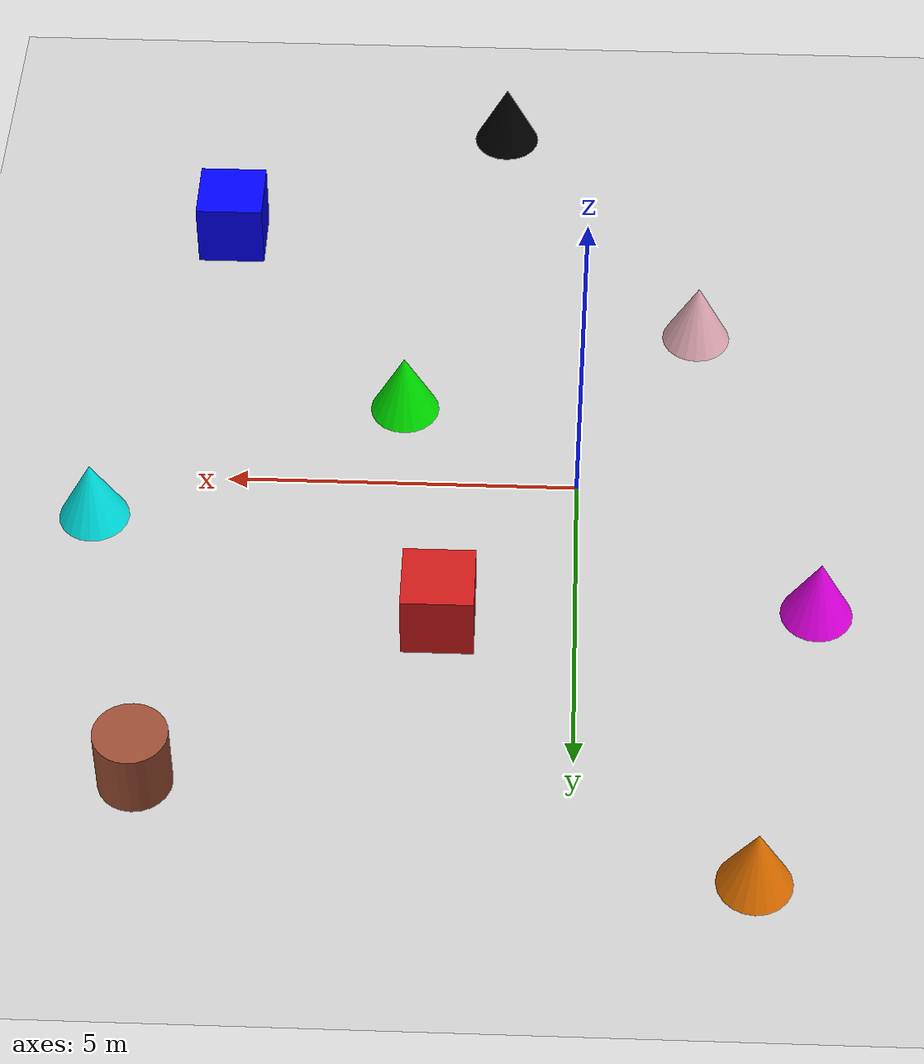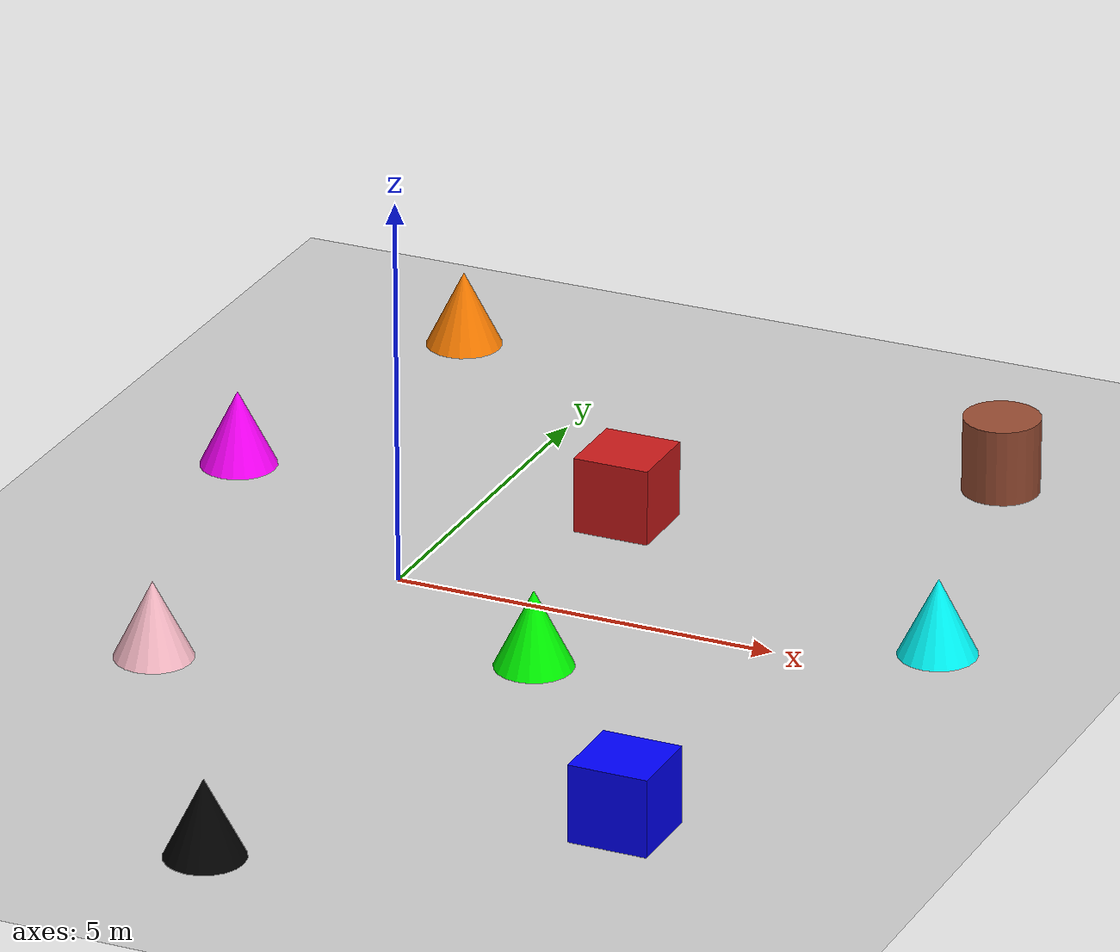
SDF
<?xml version="1.0" ?>
<sdf version='1.10'>
  <world name='robot_driver_world'>
    <physics name='1ms' type='ignored'>
      <max_step_size>0.001</max_step_size>
      <real_time_factor>1</real_time_factor>
      <real_time_update_rate>1000</real_time_update_rate>
    </physics>
    <plugin name='gz::sim::systems::Physics' filename='gz-sim-physics-system'/>
    <plugin name='gz::sim::systems::Sensors' filename='gz-sim-sensors-system'>
    <render_engine>ogre</render_engine></plugin>
    <plugin name='gz::sim::systems::UserCommands' filename='gz-sim-user-commands-system'/>
    <plugin name='gz::sim::systems::SceneBroadcaster' filename='gz-sim-scene-broadcaster-system'/>
    <plugin name='gz::sim::systems::Contact' filename='gz-sim-contact-system'/>
    <gravity>0 0 -9.8000000000000007</gravity>
    <magnetic_field>5.5644999999999998e-06 2.2875799999999999e-05 -4.2388400000000002e-05</magnetic_field>
    <atmosphere type='adiabatic'/>
    <scene>
      <ambient>0.400000006 0.400000006 0.400000006 1</ambient>
      <background>0.699999988 0.699999988 0.699999988 1</background>
      <shadows>true</shadows>
    </scene>
    <model name='ground_plane'>
      <static>true</static>
      <link name='link'>
        <collision name='collision'>
          <geometry>
            <plane>
              <normal>0 0 1</normal>
              <size>100 100</size>
            </plane>
          </geometry>
          <surface>
            <friction>
              <ode/>
            </friction>
            <bounce/>
            <contact/>
          </surface>
        </collision>
        <visual name='visual'>
          <geometry>
            <plane>
              <normal>0 0 1</normal>
              <size>100 100</size>
            </plane>
          </geometry>
          <material>
            <ambient>0.800000012 0.800000012 0.800000012 1</ambient>
            <diffuse>0.800000012 0.800000012 0.800000012 1</diffuse>
            <specular>0.800000012 0.800000012 0.800000012 1</specular>
          </material>
        </visual>
        <pose>0 0 0 0 0 0</pose>
        <inertial>
          <pose>0 0 0 0 0 0</pose>
          <mass>1</mass>
          <inertia>
            <ixx>1</ixx>
            <ixy>0</ixy>
            <ixz>0</ixz>
            <iyy>1</iyy>
            <iyz>0</iyz>
            <izz>1</izz>
          </inertia>
        </inertial>
        <enable_wind>false</enable_wind>
      </link>
      <pose>0 0 0 0 0 0</pose>
      <self_collide>false</self_collide>
    </model>
    <model name='box'>
      <pose>1.8808849001151122 2.6681089635652371 0.5 0 0 0</pose>
      <link name='box_link'>
        <inertial>
          <inertia>
            <ixx>0.16666</ixx>
            <ixy>0</ixy>
            <ixz>0</ixz>
            <iyy>0.16666</iyy>
            <iyz>0</iyz>
            <izz>0.16666</izz>
          </inertia>
          <mass>1</mass>
          <pose>0 0 0 0 0 0</pose>
        </inertial>
        <collision name='box_collision'>
          <geometry>
            <box>
              <size>1 1 1</size>
            </box>
          </geometry>
          <surface>
            <friction>
              <ode/>
            </friction>
            <bounce/>
            <contact/>
          </surface>
        </collision>
        <visual name='box_visual'>
          <geometry>
            <box>
              <size>1 1 1</size>
            </box>
          </geometry>
          <material>
            <ambient>0.8 0.1 0.1 1</ambient>
            <diffuse>0.8 0.1 0.1 1</diffuse>
            <specular>1 1 1 1</specular>
          </material>
        </visual>
        <pose>0 0 0 0 0 0</pose>
        <enable_wind>false</enable_wind>
      </link>
      <static>false</static>
      <self_collide>false</self_collide>
    </model>
    <model name='cone'>
      <pose>2.5363783124573063 -1.5265271995510261 0.5 0 0 0</pose>
      <link name='cone_link'>
        <inertial>
          <inertia>
            <ixx>0.074999999999999997</ixx>
            <ixy>0</ixy>
            <ixz>0</ixz>
            <iyy>0.074999999999999997</iyy>
            <iyz>0</iyz>
            <izz>0.074999999999999997</izz>
          </inertia>
          <mass>1</mass>
          <pose>0 0 0 0 0 0</pose>
        </inertial>
        <collision name='cone_collision'>
          <geometry>
            <cone>
              <radius>0.5</radius>
              <length>1</length>
            </cone>
          </geometry>
          <surface>
            <friction>
              <ode/>
            </friction>
            <bounce/>
            <contact/>
          </surface>
        </collision>
        <visual name='cone_visual'>
          <geometry>
            <cone>
              <radius>0.5</radius>
              <length>1</length>
            </cone>
          </geometry>
          <material>
            <ambient>0 1 0 1</ambient>
            <diffuse>0 1 0 1</diffuse>
            <specular>1 1 1 1</specular>
          </material>
        </visual>
        <pose>0 0 0 0 0 0</pose>
        <enable_wind>false</enable_wind>
      </link>
      <static>false</static>
      <self_collide>false</self_collide>
    </model>
    <model name='cone_0'>
      <pose>-1.7571744638017219 -3.1843850965783709 0.5 0 0 0</pose>
      <link name='cone_link'>
        <inertial>
          <inertia>
            <ixx>0.074999999999999997</ixx>
            <ixy>0</ixy>
            <ixz>0</ixz>
            <iyy>0.074999999999999997</iyy>
            <iyz>0</iyz>
            <izz>0.074999999999999997</izz>
          </inertia>
          <mass>1</mass>
          <pose>0 0 0 0 0 0</pose>
        </inertial>
        <collision name='cone_collision'>
          <geometry>
            <cone>
              <radius>0.5</radius>
              <length>1</length>
            </cone>
          </geometry>
          <surface>
            <friction>
              <ode/>
            </friction>
            <bounce/>
            <contact/>
          </surface>
        </collision>
        <visual name='cone_visual'>
          <geometry>
            <cone>
              <radius>0.5</radius>
              <length>1</length>
            </cone>
          </geometry>
          <material>
            <ambient>1 0.75 0.8 1</ambient>
            <diffuse>1 0.75 0.8 1</diffuse>
            <specular>1 1 1 1</specular>
          </material>
        </visual>
        <pose>0 0 0 0 0 0</pose>
        <enable_wind>false</enable_wind>
      </link>
      <static>false</static>
      <self_collide>false</self_collide>
    </model>
    <model name='box_0'>
      <pose>5.3617696675330677 -5.1474330574161398 0.5 0 0 0</pose>
      <link name='box_link'>
        <inertial>
          <inertia>
            <ixx>0.16666</ixx>
            <ixy>0</ixy>
            <ixz>0</ixz>
            <iyy>0.16666</iyy>
            <iyz>0</iyz>
            <izz>0.16666</izz>
          </inertia>
          <mass>1</mass>
          <pose>0 0 0 0 0 0</pose>
        </inertial>
        <collision name='box_collision'>
          <geometry>
            <box>
              <size>1 1 1</size>
            </box>
          </geometry>
          <surface>
            <friction>
              <ode/>
            </friction>
            <bounce/>
            <contact/>
          </surface>
        </collision>
        <visual name='box_visual'>
          <geometry>
            <box>
              <size>1 1 1</size>
            </box>
          </geometry>
          <material>
            <ambient>0 0 1 1</ambient>
            <diffuse>0 0 1 1</diffuse>
            <specular>1 1 1 1</specular>
          </material>
        </visual>
        <pose>0 0 0 0 0 0</pose>
        <enable_wind>false</enable_wind>
      </link>
      <static>false</static>
      <self_collide>false</self_collide>
    </model>
    <model name='cone_1'>
      <pose>-3.3182599841417231 2.2767830280474852 0.5 0 0 0</pose>
      <link name='cone_link'>
        <inertial>
          <inertia>
            <ixx>0.074999999999999997</ixx>
            <ixy>0</ixy>
            <ixz>0</ixz>
            <iyy>0.074999999999999997</iyy>
            <iyz>0</iyz>
            <izz>0.074999999999999997</izz>
          </inertia>
          <mass>1</mass>
          <pose>0 0 0 0 0 0</pose>
        </inertial>
        <collision name='cone_collision'>
          <geometry>
            <cone>
              <radius>0.5</radius>
              <length>1</length>
            </cone>
          </geometry>
          <surface>
            <friction>
              <ode/>
            </friction>
            <bounce/>
            <contact/>
          </surface>
        </collision>
        <visual name='cone_visual'>
          <geometry>
            <cone>
              <radius>0.5</radius>
              <length>1</length>
            </cone>
          </geometry>
          <material>
            <ambient>1 0 1 1</ambient>
            <diffuse>1 0 1 1</diffuse>
            <specular>1 1 1 1</specular>
          </material>
        </visual>
        <pose>0 0 0 0 0 0</pose>
        <enable_wind>false</enable_wind>
      </link>
      <static>false</static>
      <self_collide>false</self_collide>
    </model>
    <model name='cone_2'>
      <pose>1.1920115344042963 -7.70623644106211 0.5 0 0 0</pose>
      <link name='cone_link'>
        <inertial>
          <inertia>
            <ixx>0.074999999999999997</ixx>
            <ixy>0</ixy>
            <ixz>0</ixz>
            <iyy>0.074999999999999997</iyy>
            <iyz>0</iyz>
            <izz>0.074999999999999997</izz>
          </inertia>
          <mass>1</mass>
          <pose>0 0 0 0 0 0</pose>
        </inertial>
        <collision name='cone_collision'>
          <geometry>
            <cone>
              <radius>0.5</radius>
              <length>1</length>
            </cone>
          </geometry>
          <surface>
            <friction>
              <ode/>
            </friction>
            <bounce/>
            <contact/>
          </surface>
        </collision>
        <visual name='cone_visual'>
          <geometry>
            <cone>
              <radius>0.5</radius>
              <length>1</length>
            </cone>
          </geometry>
          <material>
            <ambient>0 0 0 1</ambient>
            <diffuse>0 0 0 1</diffuse>
            <specular>1 1 1 1</specular>
          </material>
        </visual>
        <pose>0 0 0 0 0 0</pose>
        <enable_wind>false</enable_wind>
      </link>
      <static>false</static>
      <self_collide>false</self_collide>
    </model>
    <model name='cone_3'>
      <pose>6.8430712037895347 0.78498223336601658 0.5 0 0 0</pose>
      <link name='cone_link'>
        <inertial>
          <inertia>
            <ixx>0.074999999999999997</ixx>
            <ixy>0</ixy>
            <ixz>0</ixz>
            <iyy>0.074999999999999997</iyy>
            <iyz>0</iyz>
            <izz>0.074999999999999997</izz>
          </inertia>
          <mass>1</mass>
          <pose>0 0 0 0 0 0</pose>
        </inertial>
        <collision name='cone_collision'>
          <geometry>
            <cone>
              <radius>0.5</radius>
              <length>1</length>
            </cone>
          </geometry>
          <surface>
            <friction>
              <ode/>
            </friction>
            <bounce/>
            <contact/>
          </surface>
        </collision>
        <visual name='cone_visual'>
          <geometry>
            <cone>
              <radius>0.5</radius>
              <length>1</length>
            </cone>
          </geometry>
          <material>
            <ambient>0 1 1 1</ambient>
            <diffuse>0 1 1 1</diffuse>
            <specular>1 1 1 1</specular>
          </material>
        </visual>
        <pose>0 0 0 0 0 0</pose>
        <enable_wind>false</enable_wind>
      </link>
      <static>false</static>
      <self_collide>false</self_collide>
    </model>
    <model name='cone_4'>
      <pose>-2.3227051027172791 6.8757829869716449 0.5 0 0 0</pose>
      <link name='cone_link'>
        <inertial>
          <inertia>
            <ixx>0.074999999999999997</ixx>
            <ixy>0</ixy>
            <ixz>0</ixz>
            <iyy>0.074999999999999997</iyy>
            <iyz>0</iyz>
            <izz>0.074999999999999997</izz>
          </inertia>
          <mass>1</mass>
          <pose>0 0 0 0 0 0</pose>
        </inertial>
        <collision name='cone_collision'>
          <geometry>
            <cone>
              <radius>0.5</radius>
              <length>1</length>
            </cone>
          </geometry>
          <surface>
            <friction>
              <ode/>
            </friction>
            <bounce/>
            <contact/>
          </surface>
        </collision>
        <visual name='cone_visual'>
          <geometry>
            <cone>
              <radius>0.5</radius>
              <length>1</length>
            </cone>
          </geometry>
          <material>
            <ambient>1 0.5 0 1</ambient>
            <diffuse>1 0.5 0 1</diffuse>
            <specular>1 1 1 1</specular>
          </material>
        </visual>
        <pose>0 0 0 0 0 0</pose>
        <enable_wind>false</enable_wind>
      </link>
      <static>false</static>
      <self_collide>false</self_collide>
    </model>
    <model name='cylinder'>
      <pose>5.7476555903198534 5.5271890655120099 0.5 0 0 0</pose>
      <link name='cylinder_link'>
        <inertial>
          <inertia>
            <ixx>0.14580000000000001</ixx>
            <ixy>0</ixy>
            <ixz>0</ixz>
            <iyy>0.14580000000000001</iyy>
            <iyz>0</iyz>
            <izz>0.125</izz>
          </inertia>
          <mass>1</mass>
          <pose>0 0 0 0 0 0</pose>
        </inertial>
        <collision name='cylinder_collision'>
          <geometry>
            <cylinder>
              <radius>0.5</radius>
              <length>1</length>
            </cylinder>
          </geometry>
          <surface>
            <friction>
              <ode/>
            </friction>
            <bounce/>
            <contact/>
          </surface>
        </collision>
        <visual name='cylinder_visual'>
          <geometry>
            <cylinder>
              <radius>0.5</radius>
              <length>1</length>
            </cylinder>
          </geometry>
          <material>
            <ambient>0.6 0.3 0.2 1</ambient>
            <diffuse>0.6 0.3 0.2 1</diffuse>
            <specular>1 1 1 1</specular>
          </material>
        </visual>
        <pose>0 0 0 0 0 0</pose>
        <enable_wind>false</enable_wind>
      </link>
      <static>false</static>
      <self_collide>false</self_collide>
    </model>
    <light name='sun' type='directional'>
      <pose>0 0 10 0 0 0</pose>
      <cast_shadows>true</cast_shadows>
      <intensity>1</intensity>
      <direction>-0.5 0.10000000000000001 -0.90000000000000002</direction>
      <diffuse>0.800000012 0.800000012 0.800000012 1</diffuse>
      <specular>0.200000003 0.200000003 0.200000003 1</specular>
      <attenuation>
        <range>1000</range>
        <linear>0.01</linear>
        <constant>0.90000000000000002</constant>
        <quadratic>0.001</quadratic>
      </attenuation>
      <spot>
        <inner_angle>0</inner_angle>
        <outer_angle>0</outer_angle>
        <falloff>0</falloff>
      </spot>
    </light>
  </world>
</sdf>
